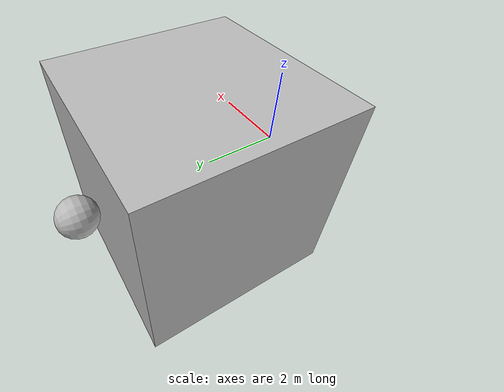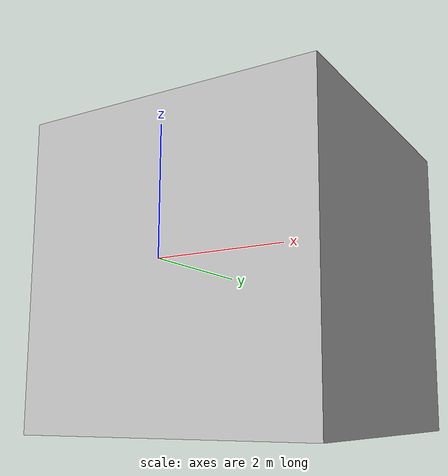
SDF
<?xml version='1.0' ?>
<sdf version='1.6'>
  <model name='simple_collision_world'>
    <pose>0 0 0 0 0 0</pose>
    <link name='large_box'>
      <pose>0 2.5 0 0 0 0</pose>
      <inertial>
        <mass>1</mass>
        <inertia>
          <ixx>1</ixx>
          <ixy>0</ixy>
          <ixz>0</ixz>
          <iyy>1</iyy>
          <iyz>0</iyz>
          <izz>1</izz>
        </inertia>
      </inertial>
      <visual name='box'>
        <geometry>
          <box>
            <size>5.0 5.0 5.0</size>
          </box>
        </geometry>
      </visual>
      <collision name='box'>
        <geometry>
          <box>
            <size>5.0 5.0 5.0</size>
          </box>
        </geometry>
      </collision>
    </link>

    <link name='small_sphere'>
      <pose>0 5.5 0 1.570796326794897 0 0</pose>
      <inertial>
        <mass>1</mass>
        <inertia>
          <ixx>1</ixx>
          <ixy>0</ixy>
          <ixz>0</ixz>
          <iyy>1</iyy>
          <iyz>0</iyz>
          <izz>1</izz>
        </inertia>
      </inertial>
      <visual name='box'>
        <geometry>
          <sphere>
            <radius>0.5</radius>
          </sphere>
        </geometry>
      </visual>
      <collision name='sphere'>
        <pose>0 0.0 0.1 0 0 0</pose>
        <geometry>
          <sphere>
            <radius>0.5</radius>
          </sphere>
        </geometry>
      </collision>
    </link>
  </model>
</sdf>
